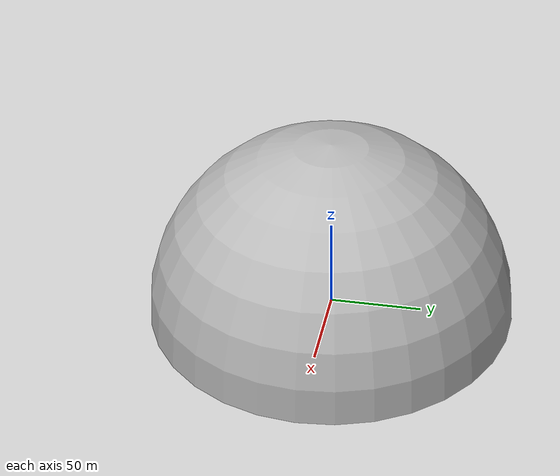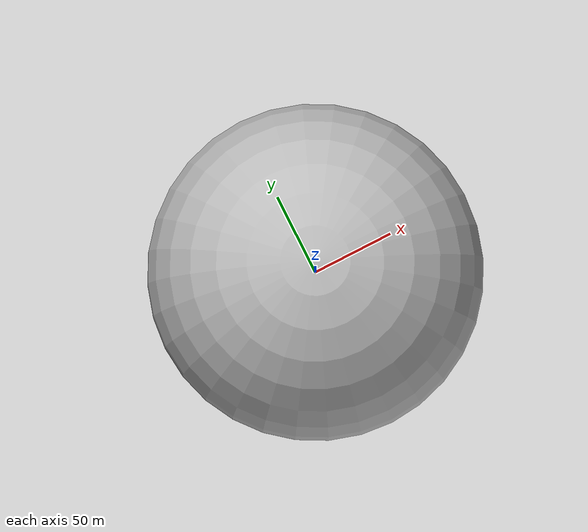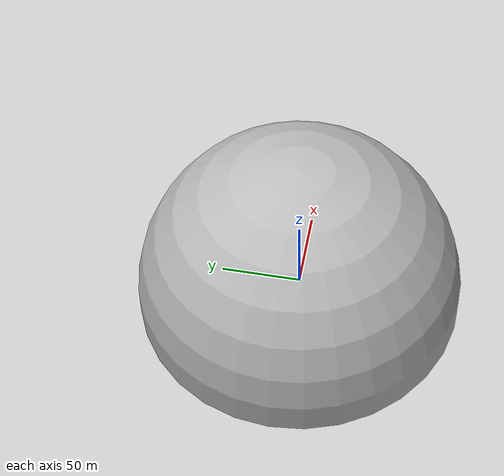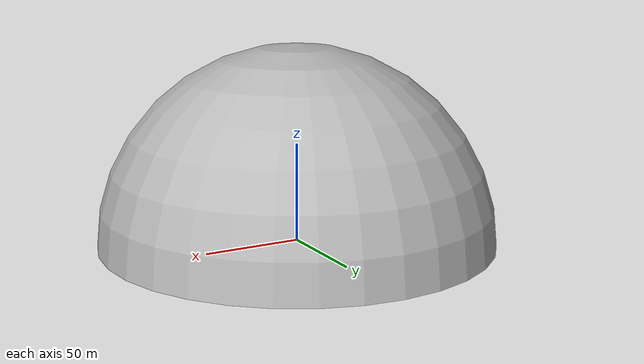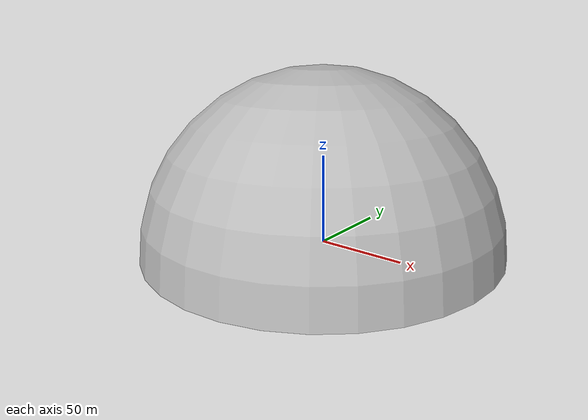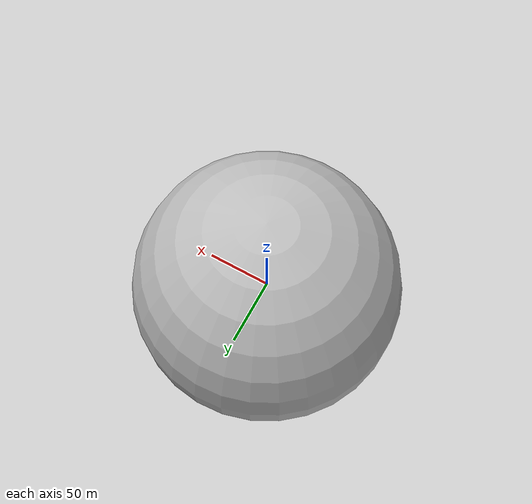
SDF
<?xml version="1.0"?>
<sdf version="1.5">
  <world name="default">
    <light name="illum" type="directional">
      <pose>-4 18 9 0 -.75 0</pose>
      <diffuse>0.1 0.4 1 1</diffuse>
      <attenuation><constant>1</constant></attenuation>
    </light>
    <light name="sky_illum" type="directional">
      <pose>0 0 5 3.14 0 0</pose>
      <diffuse>1 1 1 1</diffuse>
      <attenuation><constant>1</constant></attenuation>
    </light>

    <include>
      <uri>model://sun</uri>
    </include>
    <light name='user_point_light_0' type='point'>
      <pose frame=''>0.109933 -0.142384 1 0 -0 0</pose>
      <diffuse>0.5 0.5 0.5 1</diffuse>
      <specular>0.1 0.1 0.1 1</specular>
      <attenuation>
        <range>100</range>
        <constant>0.5</constant>
        <linear>0.01</linear>
        <quadratic>0.001</quadratic>
      </attenuation>
      <cast_shadows>0</cast_shadows>
      <direction>0 0 -1</direction>
    </light>
    <light name='user_point_light_1' type='point'>
      <pose frame=''>0.0 7.0 5.0 0 0 0</pose>
      <diffuse>0.5 0.5 0.5 1</diffuse>
      <specular>0.1 0.1 0.1 1</specular>
      <attenuation>
        <range>100</range>
        <constant>0.5</constant>
        <linear>0.01</linear>
        <quadratic>0.001</quadratic>
      </attenuation>
      <cast_shadows>0</cast_shadows>
      <direction>0 0 -1</direction>
    </light>
    <model name="water">
      <static>true</static>
      <pose>0 0 0 0 3.1415 0</pose>
      <link name="link">
        <visual name="visual">
          <transparency>0.8</transparency>
          <cast_shadows>false</cast_shadows>
          <geometry>
            <box>
              <size>5 10 .02</size>
            </box>
          </geometry>
          <material>
            <ambient>0.2 0.2 0.9 1</ambient>
            <diffuse>0.2 0.2 0.9 1</diffuse>
            <specular>0.1 0.1 0.3 1</specular>
            <emissive>0 0 0 1</emissive>
          </material>
        </visual>
      </link>
    </model>

    <model name="pool">
      <pose>0 0 -2.0 0 0 0</pose>
      <static>true</static>
      <link name="ground">
        <visual name="visual">
          <geometry>
            <mesh>
              <uri>model://pool/pool.dae</uri>
              <scale>1 1 1</scale>
            </mesh>
          </geometry>
        </visual>
        <collision name="collision">
          <geometry>
              <mesh>
                <uri>model://pool/pool.dae</uri>
                <scale>1 1 1</scale>
              </mesh>
          </geometry>
        </collision>
      </link>
    </model>

    <model name="sky_box">
      <pose>0 0 0  0 0 0</pose>
      <static>true</static>
      <link name="sky">
        <visual name="visual">
          <geometry>
              <mesh>
                <uri>model://sky_box/sky.dae</uri>
              </mesh>
          </geometry>
          <material>
            <emissive>1 1 1 1</emissive>
          </material>

        </visual>
      </link>
    </model>
  </world>
</sdf>
